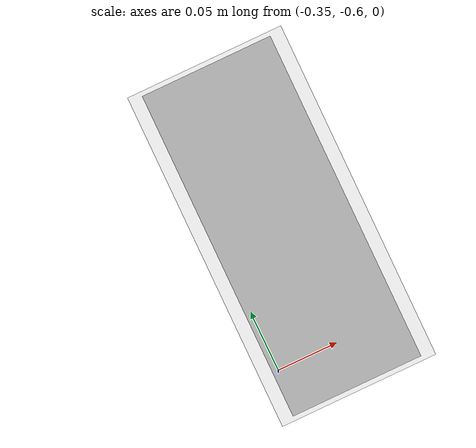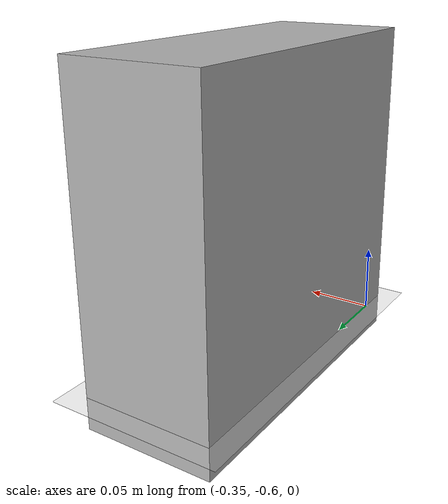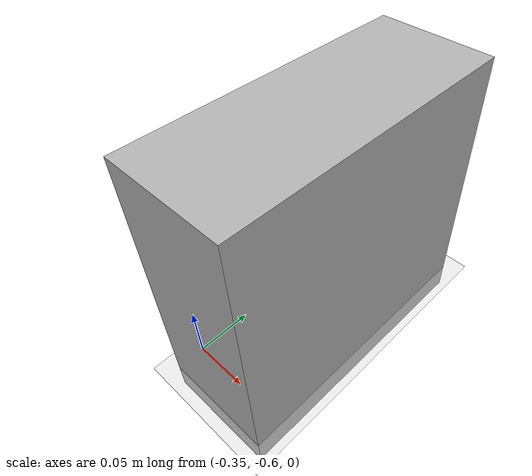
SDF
<?xml version="1.0"?>
<sdf version="1.6">
  <world name="default">
  <plugin
    filename="gz-sim-physics-system"
    name="gz::sim::systems::Physics">
  </plugin>
  <plugin
    filename="gz-sim-user-commands-system"
    name="gz::sim::systems::UserCommands">
  </plugin>
  <plugin
    filename="gz-sim-scene-broadcaster-system"
    name="gz::sim::systems::SceneBroadcaster">
  </plugin>
  <plugin
    filename="gz-sim-sensors-system"
    name="gz::sim::systems::Sensors">
    <render_engine>ogre2</render_engine>
  </plugin>
  <plugin
    filename="gz-sim-imu-system"
    name="gz::sim::systems::Imu">
  </plugin>

    <include>
      <uri>https://fuel.gazebosim.org/1.0/OpenRobotics/models/Ground Plane</uri>
    </include>

    <include>
        <uri>
            https://fuel.gazebosim.org/1.0/OpenRobotics/models/Sun
        </uri>
    </include>

    <physics type="ode">
      <real_time_update_rate>1000.0</real_time_update_rate>
      <max_step_size>0.001</max_step_size>
      <real_time_factor>1</real_time_factor>
      <ode>
        <solver>
          <type>quick</type>
          <iters>150</iters>
          <precon_iters>0</precon_iters>
          <sor>1.400000</sor>
          <use_dynamic_moi_rescaling>1</use_dynamic_moi_rescaling>
        </solver>
        <constraints>
          <cfm>0.00001</cfm>
          <erp>0.2</erp>
          <contact_max_correcting_vel>2000.000000</contact_max_correcting_vel>
          <contact_surface_layer>0.01000</contact_surface_layer>
        </constraints>
      </ode>
    </physics>

<model name='small_cube'>
  <pose>-0.3 -0.5 0.1  0 0 0</pose>

  <link name='box_link'>
    <inertial>
      <mass>0.0</mass>
      <inertia>
        <!-- Properly calculated for 0.1 × 0.25 × 0.25 m box, mass 0.11 kg -->
        <ixx>0.0</ixx>  <!-- (1/12)*m*(y² + z²) -->
        <ixy>0</ixy>
        <ixz>0</ixz>
        <iyy>0.0</iyy>  <!-- (1/12)*m*(x² + z²) -->
        <iyz>0</iyz>
        <izz>0.0</izz>  <!-- (1/12)*m*(x² + y²) -->
      </inertia>
    </inertial>

    <collision name='box_collision'>
      <geometry>
        <box>
          <size>0.1 0.25 0.25</size>  <!-- X=10cm, Y=25cm, Z=25cm (height) -->
        </box>
      </geometry>
    </collision>

    <visual name='box_visual'>
      <geometry>
        <box>
          <size>0.1 0.25 0.25</size>
        </box>
      </geometry>
      <material>
        <ambient>0.3 0.3 0.3 1</ambient>
        <diffuse>0.7 0.7 0.7 1</diffuse>
        <specular>1 1 1 1</specular>
      </material>
    </visual>

    <enable_wind>false</enable_wind>
  </link>

  <static>false</static>
  <self_collide>false</self_collide>
</model>

  </world>
</sdf>
